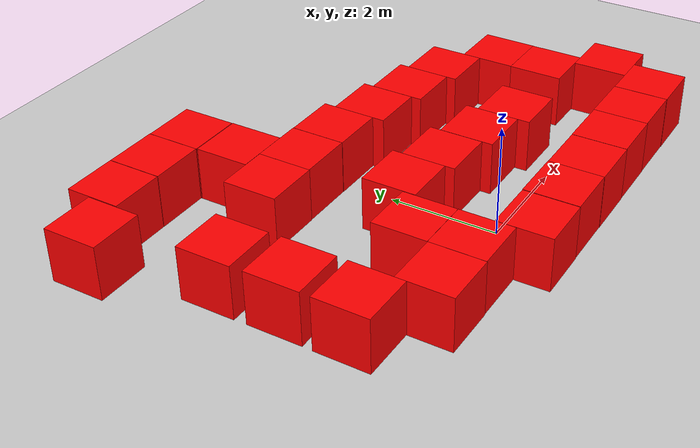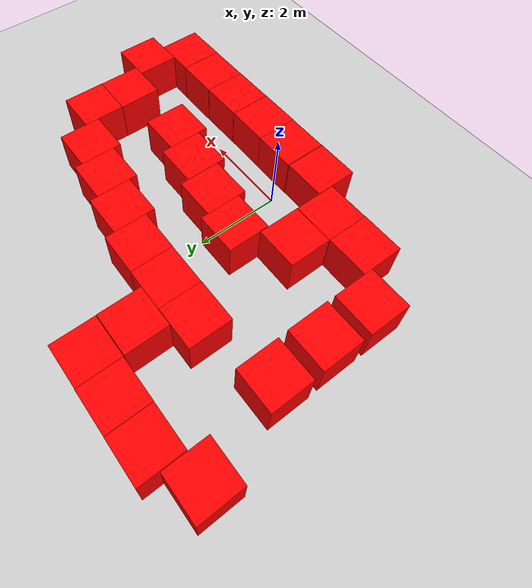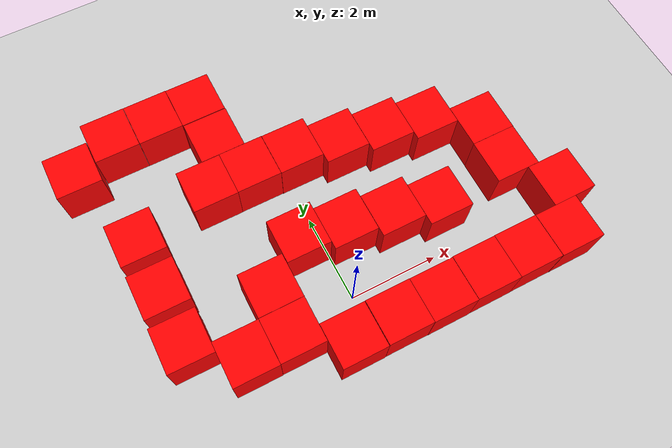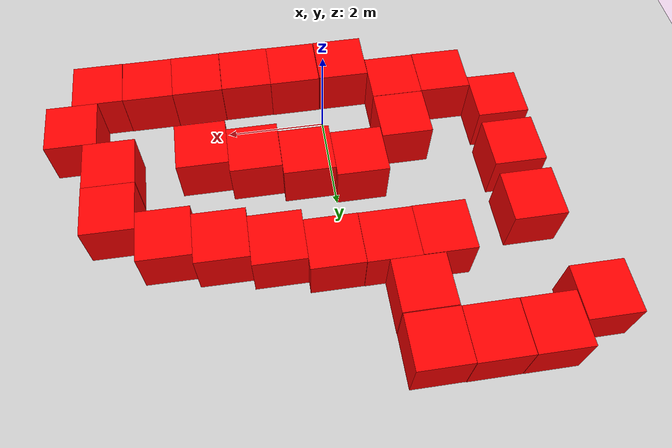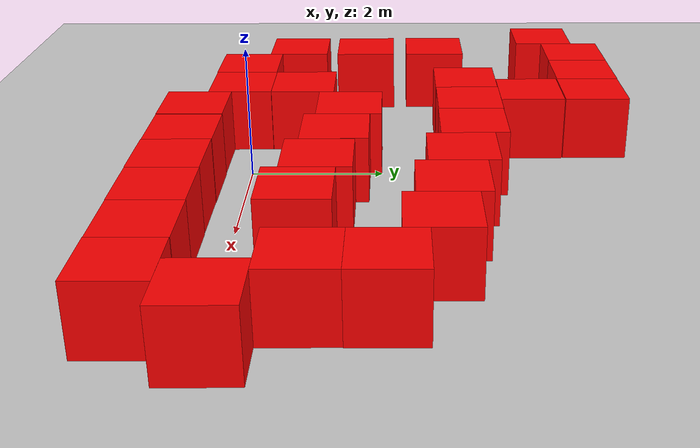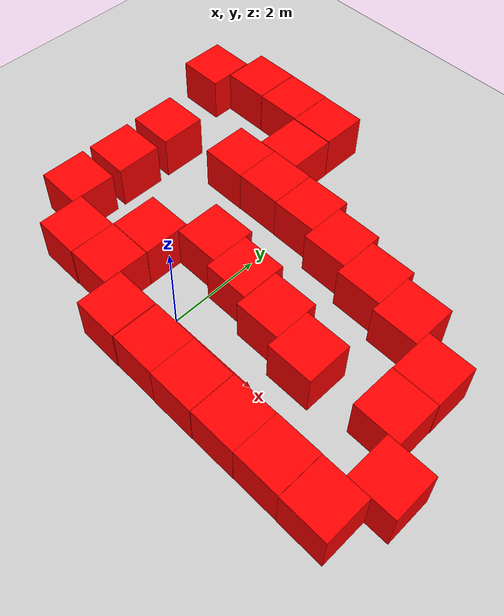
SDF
<sdf version="1.7">
 <world name="default">
  <light name="sun" type="directional">
   <pose>0 0 10 0 -0 0</pose>
   <diffuse>0.8 0.8 0.8 1</diffuse>
   <specular>0.2 0.2 0.2 1</specular>
   <attenuation>
    <range>1000</range>
    <constant>0.9</constant>
    <linear>0.01</linear>
    <quadratic>0.001</quadratic>
   </attenuation>
   <direction>-0.5 0.1 -0.9</direction>
   <spot><inner_angle>0</inner_angle><outer_angle>0</outer_angle><falloff>0</falloff></spot>
  </light>
  <model name="ground_plane">
   <static>1</static>
   <link name="link">
    <collision name="collision">
     <geometry><plane><normal>0 0 1</normal><size>100 100</size></plane></geometry>
     <surface>
      <contact><collide_bitmask>65535</collide_bitmask></contact>
      <friction><ode><mu>100</mu><mu2>50</mu2></ode></friction>
     </surface>
    </collision>
    <visual name="visual">
     <cast_shadows>0</cast_shadows>
     <geometry><plane><normal>0 0 1</normal><size>100 100</size></plane></geometry>
     <material>
      <script><uri>file://media/materials/scripts/gazebo.material</uri><name>Gazebo/Grey</name></script>
     </material>
    </visual>
   </link>
  </model>
  <gravity>0 0 -9.8</gravity>
  <magnetic_field>6e-06 2.3e-05 -4.2e-05</magnetic_field>
  <atmosphere type="adiabatic"/>
  <physics type="ode">
   <max_step_size>0.001</max_step_size>
   <real_time_factor>1</real_time_factor>
   <real_time_update_rate>1000</real_time_update_rate>
  </physics>
  <scene><ambient>0.4 0.4 0.4 1</ambient><background>0.7 0.7 0.7 1</background><shadows>1</shadows></scene>
  <spherical_coordinates>
   <surface_model>EARTH_WGS84</surface_model>
   <latitude_deg>0</latitude_deg>
   <longitude_deg>0</longitude_deg>
   <elevation>0</elevation>
   <heading_deg>0</heading_deg>
  </spherical_coordinates>
  <model name="unit_box_0">
   <pose>-0.501061 -0.913725 0.5 0 -0 -0.000311</pose>
   <link name="link">
    <inertial>
     <mass>1</mass>
     <inertia>
      <ixx>0.166667</ixx>
      <ixy>0</ixy>
      <ixz>0</ixz>
      <iyy>0.166667</iyy>
      <iyz>0</iyz>
      <izz>0.166667</izz>
     </inertia>
    </inertial>
    <collision name="collision"><geometry><box><size>1 1 1</size></box></geometry></collision>
    <visual name="visual">
     <geometry><box><size>1 1 1</size></box></geometry>
     <material><ambient>1 0 0 1</ambient><diffuse>1 0 0 1</diffuse><specular>0.1 0.1 0.1 1</specular></material>
    </visual>
   </link>
  </model>
  <model name="unit_box_1">
   <pose>0.50744 1.31621 0.5 -0 -0 -0.000881</pose>
   <link name="link">
    <inertial>
     <mass>1</mass>
     <inertia>
      <ixx>0.166667</ixx>
      <ixy>0</ixy>
      <ixz>0</ixz>
      <iyy>0.166667</iyy>
      <iyz>0</iyz>
      <izz>0.166667</izz>
     </inertia>
    </inertial>
    <collision name="collision"><geometry><box><size>1 1 1</size></box></geometry></collision>
    <visual name="visual">
     <geometry><box><size>1 1 1</size></box></geometry>
     <material><ambient>1 0 0 1</ambient><diffuse>1 0 0 1</diffuse><specular>0.1 0.1 0.1 1</specular></material>
    </visual>
   </link>
  </model>
  <model name="unit_box_2">
   <pose>1.51076 1.12091 0.5 0 0 -0.000134</pose>
   <link name="link">
    <inertial>
     <mass>1</mass>
     <inertia>
      <ixx>0.166667</ixx>
      <ixy>0</ixy>
      <ixz>0</ixz>
      <iyy>0.166667</iyy>
      <iyz>0</iyz>
      <izz>0.166667</izz>
     </inertia>
    </inertial>
    <collision name="collision"><geometry><box><size>1 1 1</size></box></geometry></collision>
    <visual name="visual">
     <geometry><box><size>1 1 1</size></box></geometry>
     <material><ambient>1 0 0 1</ambient><diffuse>1 0 0 1</diffuse><specular>0.1 0.1 0.1 1</specular></material>
    </visual>
   </link>
  </model>
  <model name="unit_box_3">
   <pose>2.51076 0.895742 0.5 0 0 -0.000134</pose>
   <link name="link">
    <inertial>
     <mass>1</mass>
     <inertia>
      <ixx>0.166667</ixx>
      <ixy>0</ixy>
      <ixz>0</ixz>
      <iyy>0.166667</iyy>
      <iyz>0</iyz>
      <izz>0.166667</izz>
     </inertia>
    </inertial>
    <collision name="collision"><geometry><box><size>1 1 1</size></box></geometry></collision>
    <visual name="visual">
     <geometry><box><size>1 1 1</size></box></geometry>
     <material><ambient>1 0 0 1</ambient><diffuse>1 0 0 1</diffuse><specular>0.1 0.1 0.1 1</specular></material>
    </visual>
   </link>
  </model>
  <model name="unit_box_4">
   <pose>0.509882 -0.907458 0.5 0 0 -0.000311</pose>
   <link name="link">
    <inertial>
     <mass>1</mass>
     <inertia>
      <ixx>0.166667</ixx>
      <ixy>0</ixy>
      <ixz>0</ixz>
      <iyy>0.166667</iyy>
      <iyz>0</iyz>
      <izz>0.166667</izz>
     </inertia>
    </inertial>
    <collision name="collision"><geometry><box><size>1 1 1</size></box></geometry></collision>
    <visual name="visual">
     <geometry><box><size>1 1 1</size></box></geometry>
     <material><ambient>1 0 0 1</ambient><diffuse>1 0 0 1</diffuse><specular>0.1 0.1 0.1 1</specular></material>
    </visual>
   </link>
  </model>
  <model name="unit_box_5">
   <pose>1.50989 -0.913266 0.5 0 -0 -0.000309</pose>
   <link name="link">
    <inertial>
     <mass>1</mass>
     <inertia>
      <ixx>0.166667</ixx>
      <ixy>0</ixy>
      <ixz>0</ixz>
      <iyy>0.166667</iyy>
      <iyz>0</iyz>
      <izz>0.166667</izz>
     </inertia>
    </inertial>
    <collision name="collision"><geometry><box><size>1 1 1</size></box></geometry></collision>
    <visual name="visual">
     <geometry><box><size>1 1 1</size></box></geometry>
     <material><ambient>1 0 0 1</ambient><diffuse>1 0 0 1</diffuse><specular>0.1 0.1 0.1 1</specular></material>
    </visual>
   </link>
  </model>
  <model name="unit_box_6">
   <pose>2.5126 -0.908527 0.499995 0 -9e-06 -0.000137</pose>
   <link name="link">
    <inertial>
     <mass>1</mass>
     <inertia>
      <ixx>0.166667</ixx>
      <ixy>0</ixy>
      <ixz>0</ixz>
      <iyy>0.166667</iyy>
      <iyz>0</iyz>
      <izz>0.166667</izz>
     </inertia>
    </inertial>
    <collision name="collision"><geometry><box><size>1 1 1</size></box></geometry></collision>
    <visual name="visual">
     <geometry><box><size>1 1 1</size></box></geometry>
     <material><ambient>1 0 0 1</ambient><diffuse>1 0 0 1</diffuse><specular>0.1 0.1 0.1 1</specular></material>
    </visual>
   </link>
  </model>
  <model name="unit_box_7">
   <pose>-1.50511 -0.282662 0.5 0 0 -0.001423</pose>
   <link name="link">
    <inertial>
     <mass>1</mass>
     <inertia>
      <ixx>0.166667</ixx>
      <ixy>0</ixy>
      <ixz>0</ixz>
      <iyy>0.166667</iyy>
      <iyz>0</iyz>
      <izz>0.166667</izz>
     </inertia>
    </inertial>
    <collision name="collision"><geometry><box><size>1 1 1</size></box></geometry></collision>
    <visual name="visual">
     <geometry><box><size>1 1 1</size></box></geometry>
     <material><ambient>1 0 0 1</ambient><diffuse>1 0 0 1</diffuse><specular>0.1 0.1 0.1 1</specular></material>
    </visual>
   </link>
  </model>
  <model name="unit_box_8">
   <pose>-1.50289 0.720694 0.5 0 -0 0.00013</pose>
   <link name="link">
    <inertial>
     <mass>1</mass>
     <inertia>
      <ixx>0.166667</ixx>
      <ixy>0</ixy>
      <ixz>0</ixz>
      <iyy>0.166667</iyy>
      <iyz>0</iyz>
      <izz>0.166667</izz>
     </inertia>
    </inertial>
    <collision name="collision"><geometry><box><size>1 1 1</size></box></geometry></collision>
    <visual name="visual">
     <geometry><box><size>1 1 1</size></box></geometry>
     <material><ambient>1 0 0 1</ambient><diffuse>1 0 0 1</diffuse><specular>0.1 0.1 0.1 1</specular></material>
    </visual>
   </link>
  </model>
  <model name="unit_box_9">
   <pose>3.51261 -0.903491 0.499995 0 1e-05 -0.000139</pose>
   <link name="link">
    <inertial>
     <mass>1</mass>
     <inertia>
      <ixx>0.166667</ixx>
      <ixy>0</ixy>
      <ixz>0</ixz>
      <iyy>0.166667</iyy>
      <iyz>0</iyz>
      <izz>0.166667</izz>
     </inertia>
    </inertial>
    <collision name="collision"><geometry><box><size>1 1 1</size></box></geometry></collision>
    <visual name="visual">
     <geometry><box><size>1 1 1</size></box></geometry>
     <material><ambient>1 0 0 1</ambient><diffuse>1 0 0 1</diffuse><specular>0.1 0.1 0.1 1</specular></material>
    </visual>
   </link>
  </model>
  <model name="unit_box_10">
   <pose>4.51502 -0.908306 0.5 0 -0 0.000688</pose>
   <link name="link">
    <inertial>
     <mass>1</mass>
     <inertia>
      <ixx>0.166667</ixx>
      <ixy>0</ixy>
      <ixz>0</ixz>
      <iyy>0.166667</iyy>
      <iyz>0</iyz>
      <izz>0.166667</izz>
     </inertia>
    </inertial>
    <collision name="collision"><geometry><box><size>1 1 1</size></box></geometry></collision>
    <visual name="visual">
     <geometry><box><size>1 1 1</size></box></geometry>
     <material><ambient>1 0 0 1</ambient><diffuse>1 0 0 1</diffuse><specular>0.1 0.1 0.1 1</specular></material>
    </visual>
   </link>
  </model>
  <model name="unit_box_11">
   <pose>5.01089 0.092098 0.5 -1e-06 0 0.000681</pose>
   <link name="link">
    <inertial>
     <mass>1</mass>
     <inertia>
      <ixx>0.166667</ixx>
      <ixy>0</ixy>
      <ixz>0</ixz>
      <iyy>0.166667</iyy>
      <iyz>0</iyz>
      <izz>0.166667</izz>
     </inertia>
    </inertial>
    <collision name="collision"><geometry><box><size>1 1 1</size></box></geometry></collision>
    <visual name="visual">
     <geometry><box><size>1 1 1</size></box></geometry>
     <material><ambient>1 0 0 1</ambient><diffuse>1 0 0 1</diffuse><specular>0.1 0.1 0.1 1</specular></material>
    </visual>
   </link>
  </model>
  <model name="unit_box_12">
   <pose>4.27352 1.09405 0.5 1e-06 -0 -0.00424</pose>
   <link name="link">
    <inertial>
     <mass>1</mass>
     <inertia>
      <ixx>0.166667</ixx>
      <ixy>0</ixy>
      <ixz>0</ixz>
      <iyy>0.166667</iyy>
      <iyz>0</iyz>
      <izz>0.166667</izz>
     </inertia>
    </inertial>
    <collision name="collision"><geometry><box><size>1 1 1</size></box></geometry></collision>
    <visual name="visual">
     <geometry><box><size>1 1 1</size></box></geometry>
     <material><ambient>1 0 0 1</ambient><diffuse>1 0 0 1</diffuse><specular>0.1 0.1 0.1 1</specular></material>
    </visual>
   </link>
  </model>
  <model name="unit_box_13">
   <pose>4.28389 2.09459 0.5 -0 -0 -0.005398</pose>
   <link name="link">
    <inertial>
     <mass>1</mass>
     <inertia>
      <ixx>0.166667</ixx>
      <ixy>0</ixy>
      <ixz>0</ixz>
      <iyy>0.166667</iyy>
      <iyz>0</iyz>
      <izz>0.166667</izz>
     </inertia>
    </inertial>
    <collision name="collision"><geometry><box><size>1 1 1</size></box></geometry></collision>
    <visual name="visual">
     <geometry><box><size>1 1 1</size></box></geometry>
     <material><ambient>1 0 0 1</ambient><diffuse>1 0 0 1</diffuse><specular>0.1 0.1 0.1 1</specular></material>
    </visual>
   </link>
  </model>
  <model name="unit_box_14">
   <pose>3.28736 2.7611 0.499995 0 -1e-05 -0.005225</pose>
   <link name="link">
    <inertial>
     <mass>1</mass>
     <inertia>
      <ixx>0.166667</ixx>
      <ixy>0</ixy>
      <ixz>0</ixz>
      <iyy>0.166667</iyy>
      <iyz>0</iyz>
      <izz>0.166667</izz>
     </inertia>
    </inertial>
    <collision name="collision"><geometry><box><size>1 1 1</size></box></geometry></collision>
    <visual name="visual">
     <geometry><box><size>1 1 1</size></box></geometry>
     <material><ambient>1 0 0 1</ambient><diffuse>1 0 0 1</diffuse><specular>0.1 0.1 0.1 1</specular></material>
    </visual>
   </link>
  </model>
  <model name="unit_box_15">
   <pose>2.28832 2.94646 0.5 0 0 -0.005224</pose>
   <link name="link">
    <inertial>
     <mass>1</mass>
     <inertia>
      <ixx>0.166667</ixx>
      <ixy>0</ixy>
      <ixz>0</ixz>
      <iyy>0.166667</iyy>
      <iyz>0</iyz>
      <izz>0.166667</izz>
     </inertia>
    </inertial>
    <collision name="collision"><geometry><box><size>1 1 1</size></box></geometry></collision>
    <visual name="visual">
     <geometry><box><size>1 1 1</size></box></geometry>
     <material><ambient>1 0 0 1</ambient><diffuse>1 0 0 1</diffuse><specular>0.1 0.1 0.1 1</specular></material>
    </visual>
   </link>
  </model>
  <model name="unit_box_16">
   <pose>1.2886 3.13645 0.499995 0 -1e-05 -0.003856</pose>
   <link name="link">
    <inertial>
     <mass>1</mass>
     <inertia>
      <ixx>0.166667</ixx>
      <ixy>0</ixy>
      <ixz>0</ixz>
      <iyy>0.166667</iyy>
      <iyz>0</iyz>
      <izz>0.166667</izz>
     </inertia>
    </inertial>
    <collision name="collision"><geometry><box><size>1 1 1</size></box></geometry></collision>
    <visual name="visual">
     <geometry><box><size>1 1 1</size></box></geometry>
     <material><ambient>1 0 0 1</ambient><diffuse>1 0 0 1</diffuse><specular>0.1 0.1 0.1 1</specular></material>
    </visual>
   </link>
  </model>
  <model name="unit_box_17">
   <pose>0.289455 3.35697 0.499995 0 1e-05 -0.003857</pose>
   <link name="link">
    <inertial>
     <mass>1</mass>
     <inertia>
      <ixx>0.166667</ixx>
      <ixy>0</ixy>
      <ixz>0</ixz>
      <iyy>0.166667</iyy>
      <iyz>0</iyz>
      <izz>0.166667</izz>
     </inertia>
    </inertial>
    <collision name="collision"><geometry><box><size>1 1 1</size></box></geometry></collision>
    <visual name="visual">
     <geometry><box><size>1 1 1</size></box></geometry>
     <material><ambient>1 0 0 1</ambient><diffuse>1 0 0 1</diffuse><specular>0.1 0.1 0.1 1</specular></material>
    </visual>
   </link>
  </model>
  <model name="unit_box_18">
   <pose>-0.712005 3.36561 0.5 -1e-06 -0 -0.002546</pose>
   <link name="link">
    <inertial>
     <mass>1</mass>
     <inertia>
      <ixx>0.166667</ixx>
      <ixy>0</ixy>
      <ixz>0</ixz>
      <iyy>0.166667</iyy>
      <iyz>0</iyz>
      <izz>0.166667</izz>
     </inertia>
    </inertial>
    <collision name="collision"><geometry><box><size>1 1 1</size></box></geometry></collision>
    <visual name="visual">
     <geometry><box><size>1 1 1</size></box></geometry>
     <material><ambient>1 0 0 1</ambient><diffuse>1 0 0 1</diffuse><specular>0.1 0.1 0.1 1</specular></material>
    </visual>
   </link>
  </model>
  <model name="unit_box_19">
   <pose>-1.71205 3.36227 0.5 0 0 -0.002572</pose>
   <link name="link">
    <inertial>
     <mass>1</mass>
     <inertia>
      <ixx>0.166667</ixx>
      <ixy>0</ixy>
      <ixz>0</ixz>
      <iyy>0.166667</iyy>
      <iyz>0</iyz>
      <izz>0.166667</izz>
     </inertia>
    </inertial>
    <collision name="collision"><geometry><box><size>1 1 1</size></box></geometry></collision>
    <visual name="visual">
     <geometry><box><size>1 1 1</size></box></geometry>
     <material><ambient>1 0 0 1</ambient><diffuse>1 0 0 1</diffuse><specular>0.1 0.1 0.1 1</specular></material>
    </visual>
   </link>
  </model>
  <model name="unit_box_20">
   <pose>-3.50338 2.91385 0.5 0 -0 0</pose>
   <link name="link">
    <inertial>
     <mass>1</mass>
     <inertia>
      <ixx>0.166667</ixx>
      <ixy>0</ixy>
      <ixz>0</ixz>
      <iyy>0.166667</iyy>
      <iyz>0</iyz>
      <izz>0.166667</izz>
     </inertia>
    </inertial>
    <collision name="collision"><geometry><box><size>1 1 1</size></box></geometry></collision>
    <visual name="visual">
     <geometry><box><size>1 1 1</size></box></geometry>
     <material><ambient>1 0 0 1</ambient><diffuse>1 0 0 1</diffuse><specular>0.1 0.1 0.1 1</specular></material>
    </visual>
   </link>
  </model>
  <model name="unit_box">
   <pose>-0.492425 1.49308 0.5 0 0 -0.000881</pose>
   <link name="link">
    <inertial>
     <mass>1</mass>
     <inertia>
      <ixx>0.166667</ixx>
      <ixy>0</ixy>
      <ixz>0</ixz>
      <iyy>0.166667</iyy>
      <iyz>0</iyz>
      <izz>0.166667</izz>
     </inertia>
    </inertial>
    <collision name="collision"><geometry><box><size>1 1 1</size></box></geometry></collision>
    <visual name="visual">
     <geometry><box><size>1 1 1</size></box></geometry>
     <material><ambient>1 0 0 1</ambient><diffuse>1 0 0 1</diffuse><specular>0.1 0.1 0.1 1</specular></material>
    </visual>
   </link>
  </model>
  <model name="unit_box_21">
   <pose>-2.50683 -0.28778 0.5 0 0 -0.00484</pose>
   <link name="link">
    <inertial>
     <mass>1</mass>
     <inertia>
      <ixx>0.166667</ixx>
      <ixy>0</ixy>
      <ixz>0</ixz>
      <iyy>0.166667</iyy>
      <iyz>0</iyz>
      <izz>0.166667</izz>
     </inertia>
    </inertial>
    <collision name="collision"><geometry><box><size>1 1 1</size></box></geometry></collision>
    <visual name="visual">
     <geometry><box><size>1 1 1</size></box></geometry>
     <material><ambient>1 0 0 1</ambient><diffuse>1 0 0 1</diffuse><specular>0.1 0.1 0.1 1</specular></material>
    </visual>
   </link>
  </model>
  <model name="unit_box_22">
   <pose>-3.49333 1.69003 0.5 0 -0 0</pose>
   <link name="link">
    <inertial>
     <mass>1</mass>
     <inertia>
      <ixx>0.166667</ixx>
      <ixy>0</ixy>
      <ixz>0</ixz>
      <iyy>0.166667</iyy>
      <iyz>0</iyz>
      <izz>0.166667</izz>
     </inertia>
    </inertial>
    <collision name="collision"><geometry><box><size>1 1 1</size></box></geometry></collision>
    <visual name="visual">
     <geometry><box><size>1 1 1</size></box></geometry>
     <material><ambient>1 0 0 1</ambient><diffuse>1 0 0 1</diffuse><specular>0.1 0.1 0.1 1</specular></material>
    </visual>
   </link>
  </model>
  <model name="unit_box_23">
   <pose>-3.50258 0.506615 0.5 0 -0 -0.006381</pose>
   <link name="link">
    <inertial>
     <mass>1</mass>
     <inertia>
      <ixx>0.166667</ixx>
      <ixy>0</ixy>
      <ixz>0</ixz>
      <iyy>0.166667</iyy>
      <iyz>0</iyz>
      <izz>0.166667</izz>
     </inertia>
    </inertial>
    <collision name="collision"><geometry><box><size>1 1 1</size></box></geometry></collision>
    <visual name="visual">
     <geometry><box><size>1 1 1</size></box></geometry>
     <material><ambient>1 0 0 1</ambient><diffuse>1 0 0 1</diffuse><specular>0.1 0.1 0.1 1</specular></material>
    </visual>
   </link>
  </model>
  <model name="unit_box_24">
   <pose>-1.10908 4.3669 0.5 1e-06 0 0.000222</pose>
   <link name="link">
    <inertial>
     <mass>1</mass>
     <inertia>
      <ixx>0.166667</ixx>
      <ixy>0</ixy>
      <ixz>0</ixz>
      <iyy>0.166667</iyy>
      <iyz>0</iyz>
      <izz>0.166667</izz>
     </inertia>
    </inertial>
    <collision name="collision"><geometry><box><size>1 1 1</size></box></geometry></collision>
    <visual name="visual">
     <geometry><box><size>1 1 1</size></box></geometry>
     <material><ambient>1 0 0 1</ambient><diffuse>1 0 0 1</diffuse><specular>0.1 0.1 0.1 1</specular></material>
    </visual>
   </link>
  </model>
  <model name="unit_box_25">
   <pose>-1.11607 5.38014 0.5 0 -0 0</pose>
   <link name="link">
    <inertial>
     <mass>1</mass>
     <inertia>
      <ixx>0.166667</ixx>
      <ixy>0</ixy>
      <ixz>0</ixz>
      <iyy>0.166667</iyy>
      <iyz>0</iyz>
      <izz>0.166667</izz>
     </inertia>
    </inertial>
    <collision name="collision"><geometry><box><size>1 1 1</size></box></geometry></collision>
    <visual name="visual">
     <geometry><box><size>1 1 1</size></box></geometry>
     <material><ambient>1 0 0 1</ambient><diffuse>1 0 0 1</diffuse><specular>0.1 0.1 0.1 1</specular></material>
    </visual>
   </link>
  </model>
  <model name="unit_box_26">
   <pose>-2.11824 5.38725 0.5 0 -0 0</pose>
   <link name="link">
    <inertial>
     <mass>1</mass>
     <inertia>
      <ixx>0.166667</ixx>
      <ixy>0</ixy>
      <ixz>0</ixz>
      <iyy>0.166667</iyy>
      <iyz>0</iyz>
      <izz>0.166667</izz>
     </inertia>
    </inertial>
    <collision name="collision"><geometry><box><size>1 1 1</size></box></geometry></collision>
    <visual name="visual">
     <geometry><box><size>1 1 1</size></box></geometry>
     <material><ambient>1 0 0 1</ambient><diffuse>1 0 0 1</diffuse><specular>0.1 0.1 0.1 1</specular></material>
    </visual>
   </link>
  </model>
  <model name="unit_box_27">
   <pose>-3.12366 5.38983 0.5 0 -0 0</pose>
   <link name="link">
    <inertial>
     <mass>1</mass>
     <inertia>
      <ixx>0.166667</ixx>
      <ixy>0</ixy>
      <ixz>0</ixz>
      <iyy>0.166667</iyy>
      <iyz>0</iyz>
      <izz>0.166667</izz>
     </inertia>
    </inertial>
    <collision name="collision"><geometry><box><size>1 1 1</size></box></geometry></collision>
    <visual name="visual">
     <geometry><box><size>1 1 1</size></box></geometry>
     <material><ambient>1 0 0 1</ambient><diffuse>1 0 0 1</diffuse><specular>0.1 0.1 0.1 1</specular></material>
    </visual>
   </link>
  </model>
  <model name="unit_box_28">
   <pose>-4.13926 4.93994 0.5 0 -0 0</pose>
   <link name="link">
    <inertial>
     <mass>1</mass>
     <inertia>
      <ixx>0.166667</ixx>
      <ixy>0</ixy>
      <ixz>0</ixz>
      <iyy>0.166667</iyy>
      <iyz>0</iyz>
      <izz>0.166667</izz>
     </inertia>
    </inertial>
    <collision name="collision"><geometry><box><size>1 1 1</size></box></geometry></collision>
    <visual name="visual">
     <geometry><box><size>1 1 1</size></box></geometry>
     <material><ambient>1 0 0 1</ambient><diffuse>1 0 0 1</diffuse><specular>0.1 0.1 0.1 1</specular></material>
    </visual>
   </link>
  </model>
 </world>
</sdf>
